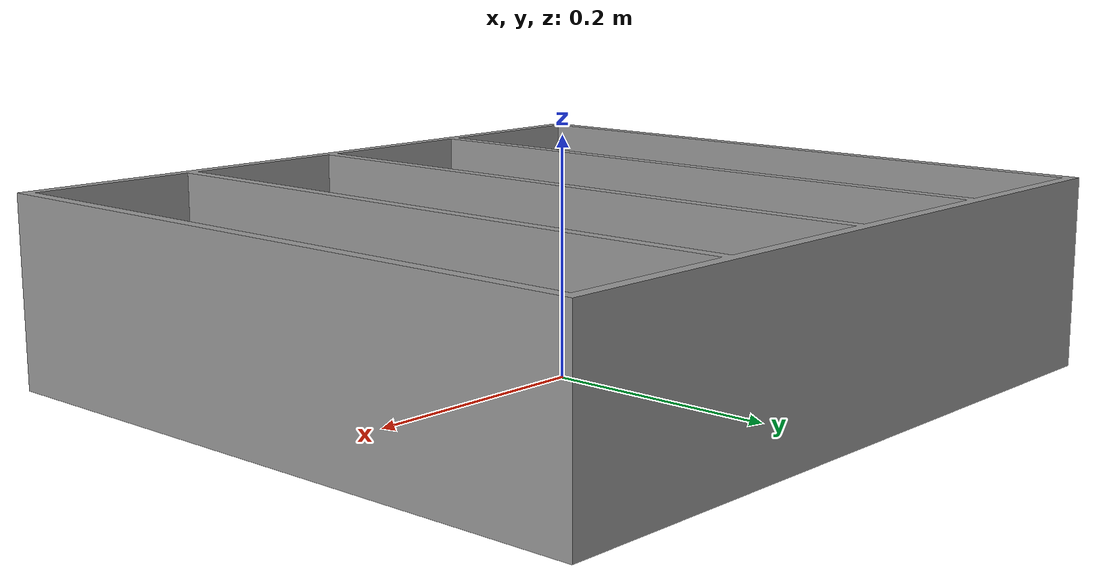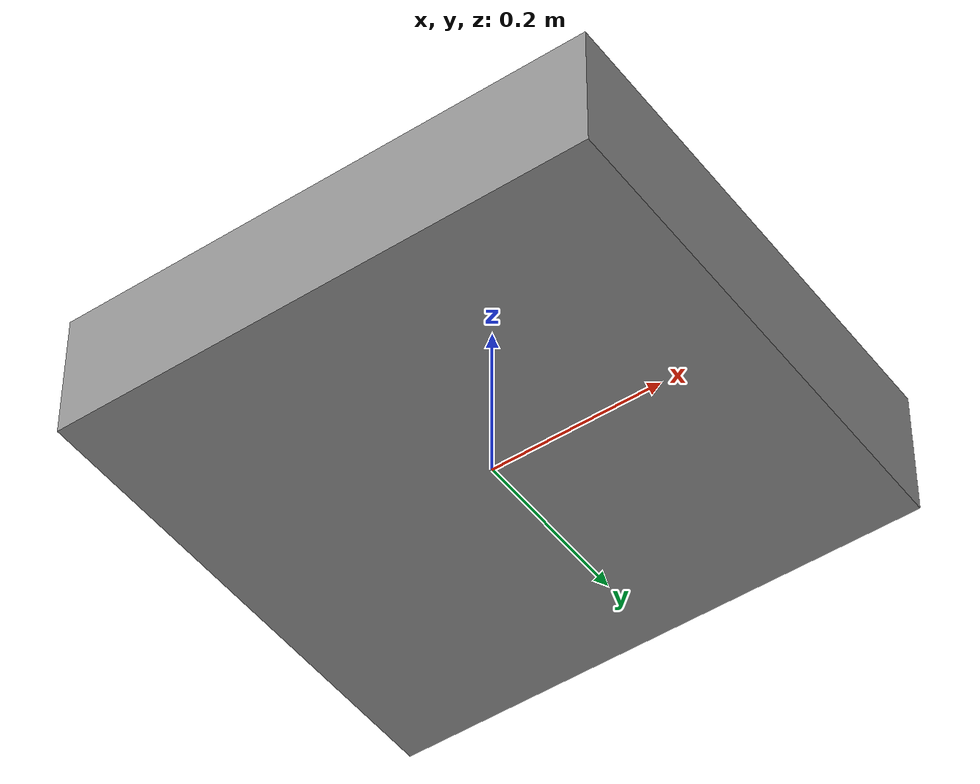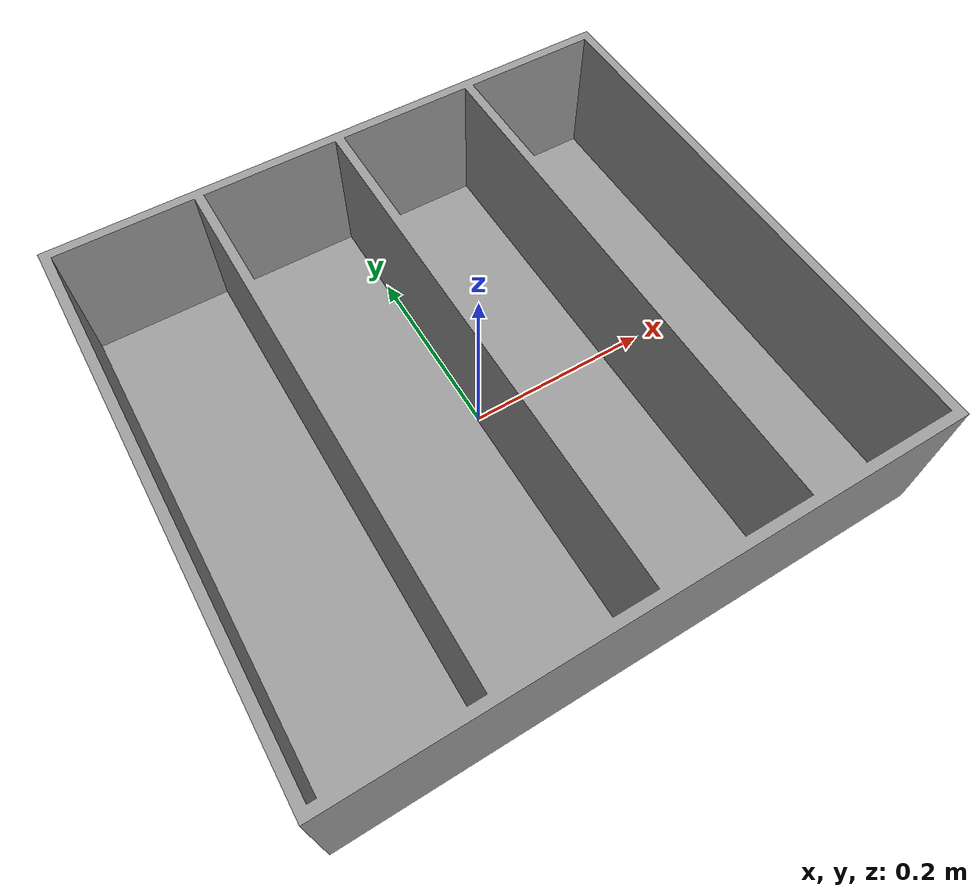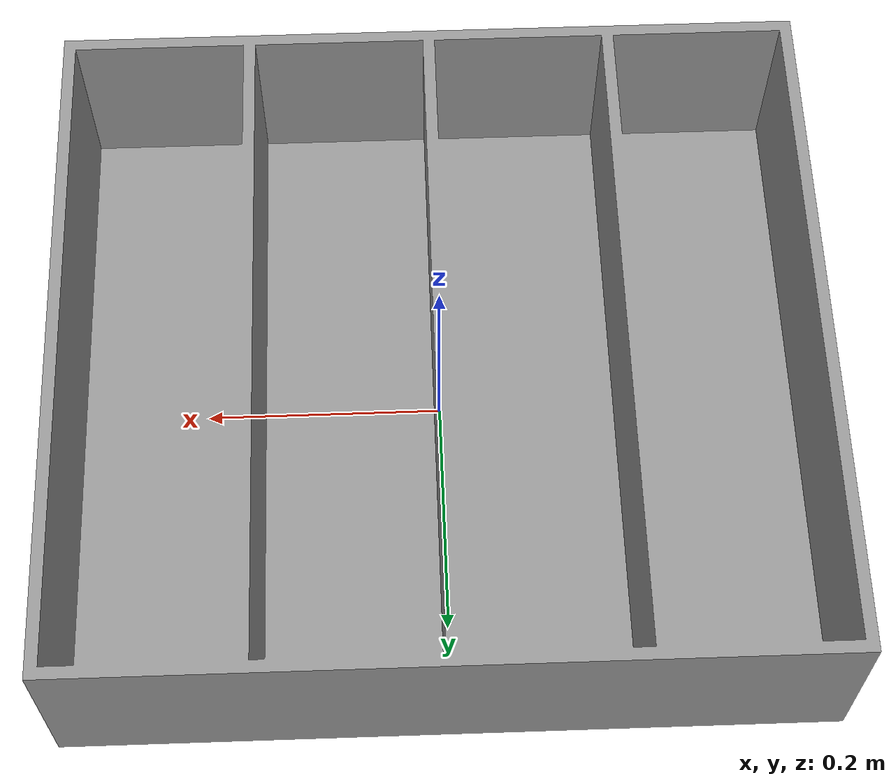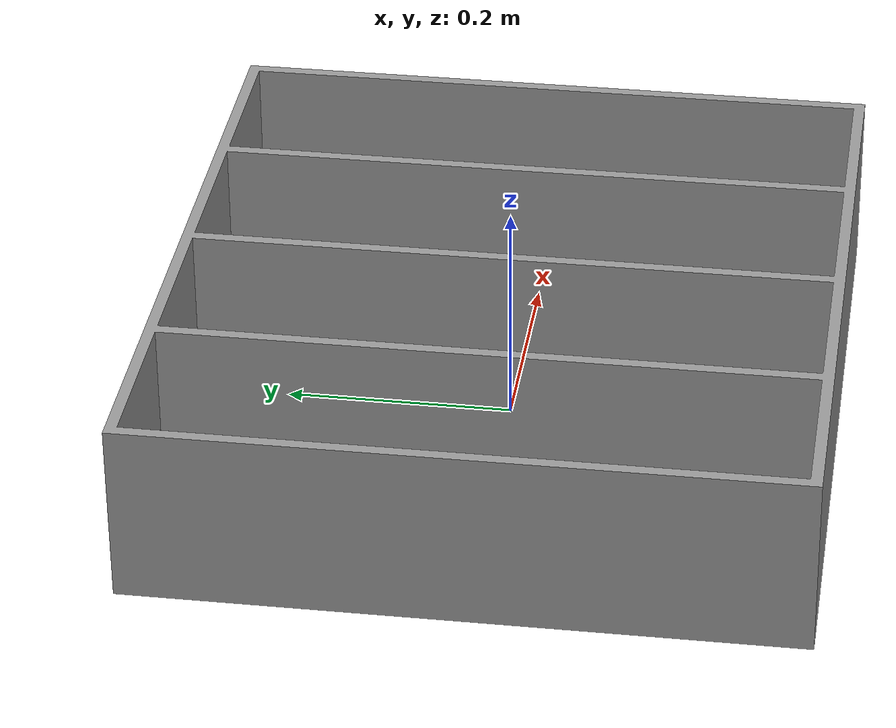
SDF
<?xml version="1.0" ?>
<sdf version="1.5">
  <model name="battery holder">
    <pose>0 0 0.057 0 0 0</pose>
    <link name="link">
      <collision name="collision">
        <pose>0 0 0.0 0 0 0</pose>
        <geometry>
          <mesh>
            <uri>model://battery_holder/meshes/battery_holder.dae</uri>
            <scale>0.01 0.01 0.01</scale>
          </mesh>
        </geometry>
      </collision>
      <visual name="visual">
        <pose>0 0 0.0 0 0 0</pose>
        <geometry>
          <mesh>
            <uri>model://battery_holder/meshes/battery_holder.dae</uri>
            <scale>0.01 0.01 0.01</scale>
          </mesh>
        </geometry>
        <material>
          <script>
            <uri>file://media/materials/scripts/gazebo.material</uri>
            <name>Gazebo/Grey</name>
          </script>
        </material>
      </visual>
    </link>
  </model>
</sdf>
